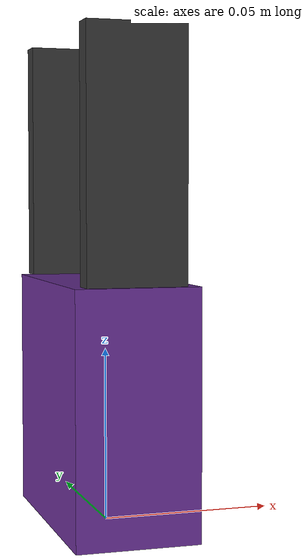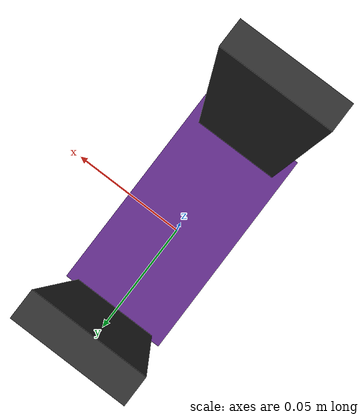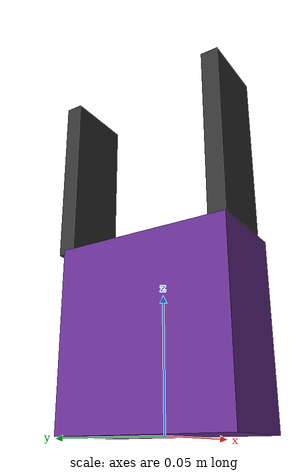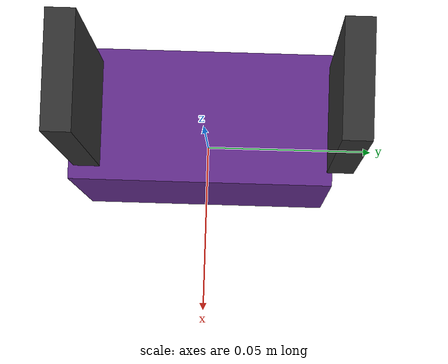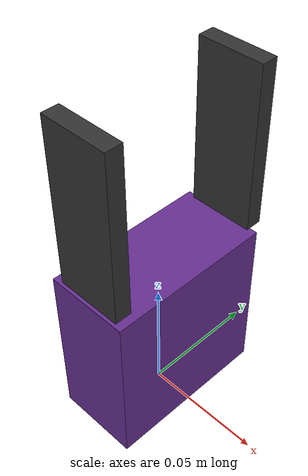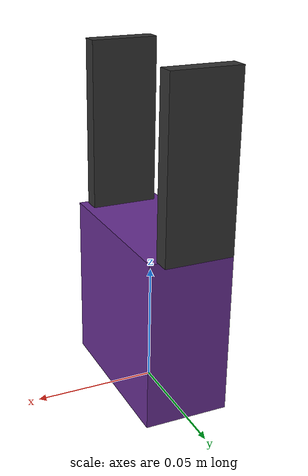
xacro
<?xml version="1.0" ?>
<robot xmlns:xacro="http://www.ros.org/wiki/xacro">

  <!-- scale down the gripper base to match the UR3 end effector size -->
  <xacro:property name="gripper_scale" value="0.07"/>

  <link name="gripper_base">
    <visual>
      <geometry>
        <box size="${0.5 * gripper_scale}
                   ${1.0 * gripper_scale}
                   ${1.0 * gripper_scale}"/>
      </geometry>

      <origin xyz="0 0 ${0.5 * gripper_scale}"/>

      <material name="violet">
        <color rgba="0.4 0.18 0.57 1.0" />
      </material>
    </visual>

    <collision>
      <geometry>
        <box size="${0.5 * gripper_scale}
          ${1.0 * gripper_scale}
          ${1.0 * gripper_scale}"/>
      </geometry>

      <origin xyz="0 0 ${0.5 * gripper_scale}"/>
    </collision>

    <inertial>
      <origin xyz="0 0 0.25"/>
      <mass value="6.25"/>
      <inertia
        ixx="0.416667"
        ixy="0"
        ixz="0"
        iyy="0.260417"
        iyz="0"
        izz="0.260417"/>
      </inertial>
  </link>

  <link name="finger_right">
    <visual>
      <geometry>
        <box size="${0.4 * gripper_scale}
          ${0.1 * gripper_scale}
          ${1.0 * gripper_scale}"/>
      </geometry>

      <origin xyz="0
                 ${0.05 * gripper_scale}
                 ${0.5 * gripper_scale}"/>
      <material name="grey">
        <color rgba="0.2 0.2 0.2 1"/>
      </material>
    </visual>

    <collision>
      <geometry>
        <box size="${0.4 * gripper_scale}
                ${0.1 * gripper_scale}
                ${1.0 * gripper_scale}"/>
      </geometry>

      <origin xyz="0
                 ${0.05 * gripper_scale}
                 ${0.5 * gripper_scale}"/>
    </collision>

    <inertial>
      <origin xyz="0 0.025 0.25"/>
      <mass value="4"/>
      <inertia ixx="0.33666700000000001" ixy="0.0" ixz="0.0" iyy="0.38666700000000001" iyz="0.0" izz="0.056666700000000003"/>
    </inertial>
  </link>

  <link name="finger_left">
    <visual>
      <geometry>
        <box size="${0.4 * gripper_scale}
                ${0.1 * gripper_scale}
                ${1.0 * gripper_scale}"/>
      </geometry>
      <origin xyz="0
                 ${0.05 * gripper_scale}
                 ${0.5 * gripper_scale}"/>
      <material name="grey">
        <color rgba="0.2 0.2 0.2 1"/>
      </material>
    </visual>

    <collision>
      <geometry>
        <box size="${0.4 * gripper_scale}
                ${0.1 * gripper_scale}
                ${1.0 * gripper_scale}"/>
      </geometry>
      <origin xyz="0
                 ${0.05 * gripper_scale}
                 ${0.5 * gripper_scale}"/>
    </collision>

    <inertial>
      <origin xyz="0 0.025 0.25"/>
      <mass value="4"/>
      <inertia ixx="0.33666700000000001" ixy="0.0" ixz="0.0" iyy="0.38666700000000001" iyz="0.0" izz="0.056666700000000003"/>
    </inertial>
  </link>

  <joint name="right_finger_joint" type="prismatic">
    <axis xyz="0 1 0"/>
    <origin
        xyz="0 ${-0.48 * gripper_scale} ${1.0 * gripper_scale}"
        rpy="0 0 0"/>    <parent link="gripper_base"/>
    <child link="finger_right"/>
    <!-- position limit -->
    <limit effort="1000.0" lower="0" upper="0.032" velocity="5"/>
  </joint>

  <joint name="left_finger_joint" type="prismatic">
    <mimic joint="right_finger_joint"  multiplier="-1.0"/>
    <axis xyz="0 1 0"/>
    <origin
      xyz="0 ${0.48 * gripper_scale} ${1.0 * gripper_scale}"
      rpy="0 0 0"/>
    <parent link="gripper_base"/>
    <child link="finger_left"/>
    <!-- mimic, no need to change, it will follow the right finger -->
    <limit effort="1000.0" lower="0" upper="0.0" velocity="5"/>
  </joint>
</robot>
